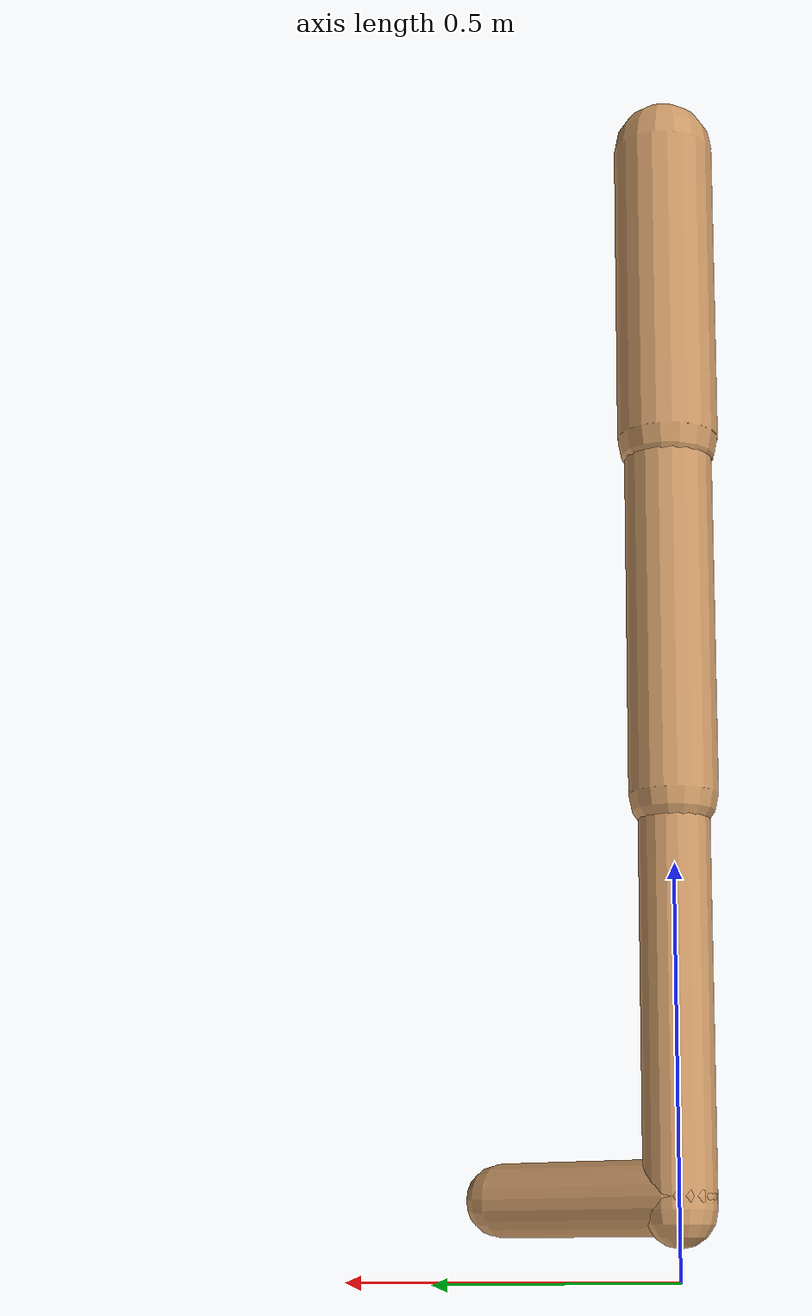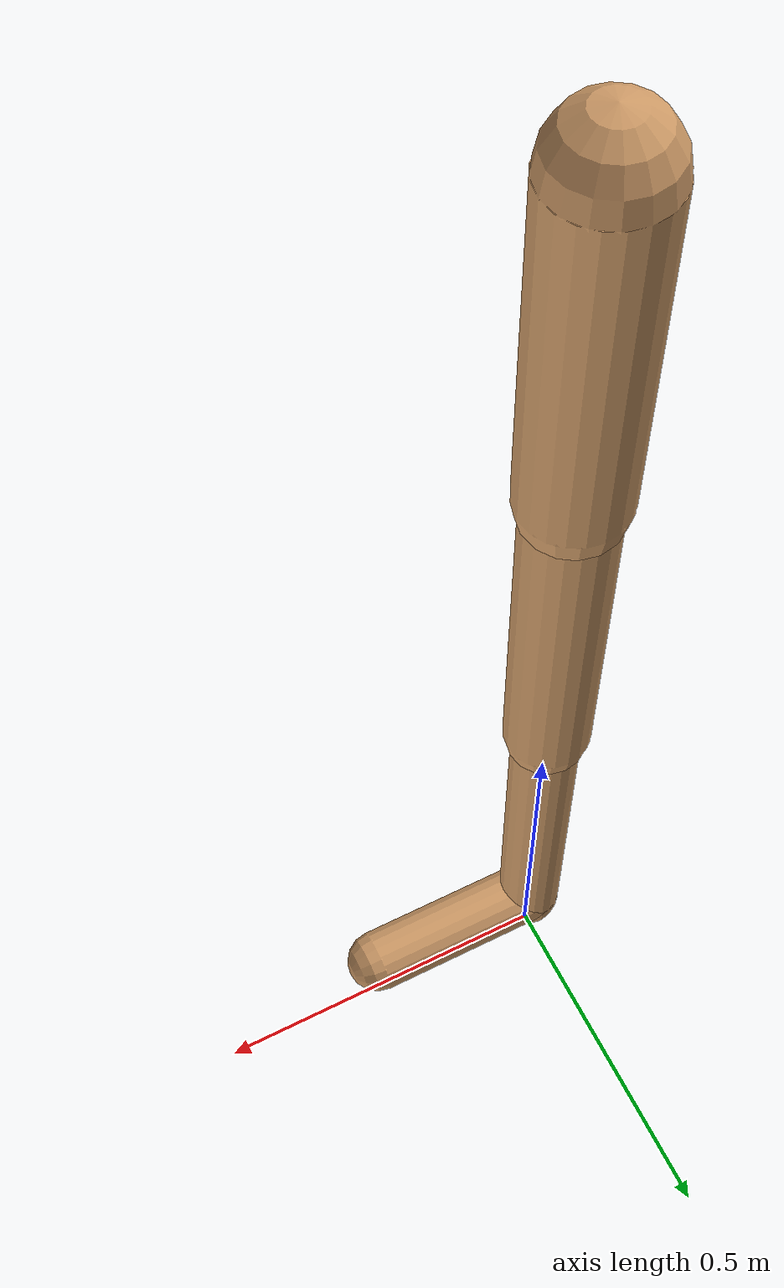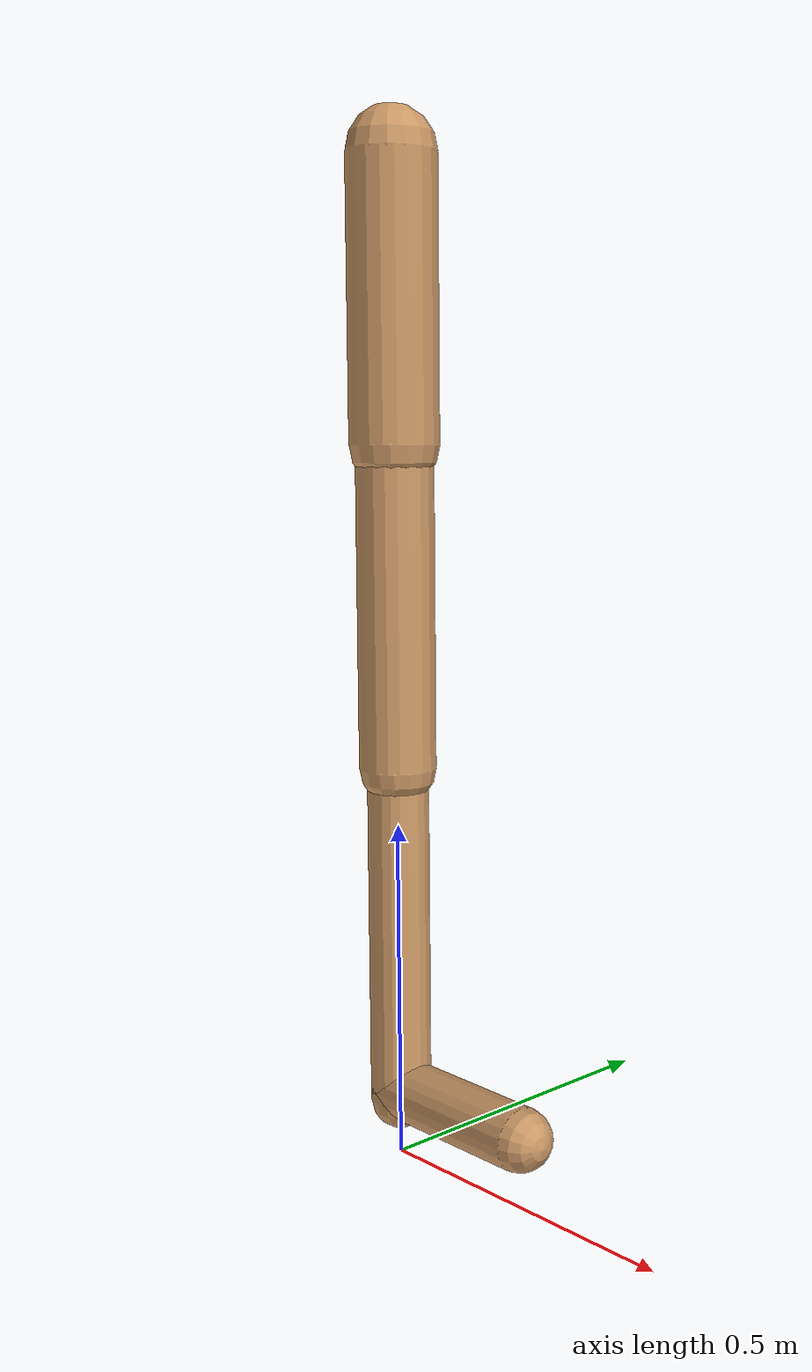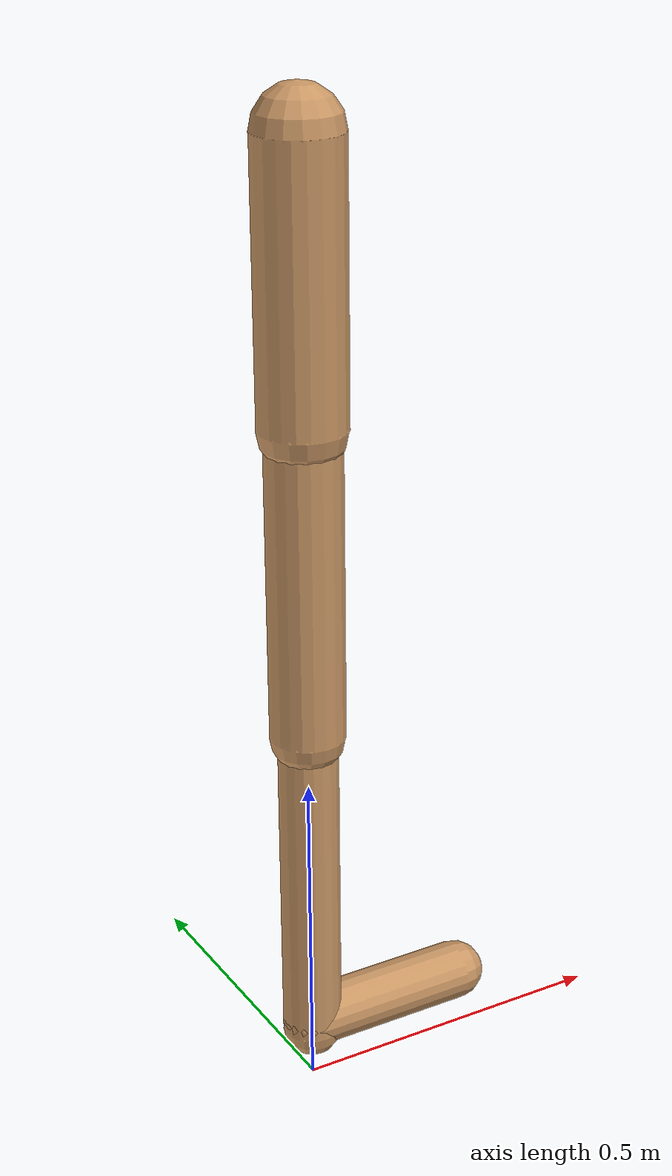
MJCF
<mujoco model="walker2d">
  <compiler angle="degree" coordinate="global" inertiafromgeom="true" />
  <default>
    <joint armature="0.01" damping=".1" limited="true" />
    <geom conaffinity="0" condim="3" contype="1" density="1000" friction="0.8 .1 .1" rgba="0.8 0.6 .4 1" />
  </default>
  <option integrator="RK4" timestep="0.002" />
  <worldbody>

    <body name="torso" pos="0 0 0.029406891538473576">
      <joint armature="0" axis="1 0 0" damping="0" limited="false" name="ignorex" pos="0 0 0" stiffness="0" type="slide" />
      <joint armature="0" axis="0 0 1" damping="0" limited="false" name="ignorez" pos="0 0 0" ref="1.25" stiffness="0" type="slide" />
      <joint armature="0" axis="0 1 0" damping="0" limited="false" name="ignorey" pos="0 0 0" stiffness="0" type="hinge" />
      <geom fromto="0 0 1.45 0 0 1.05" name="torso_geom" size="0.0643061923599738" type="capsule" />
      <body name="thigh">
        <joint axis="0 -1 0" name="thigh_joint" pos="0 0 1.05" range="-150 0" type="hinge" />
        <geom fromto="0.0 0.0 1.05 0.0 0.0 0.5860704197975651" name="thigh_geom" size="0.05582043219532571" type="capsule" />
        <body name="leg" pos="0.0 0.0 -0.013929580202434844">
          <joint axis="0 -1 0" name="leg_joint" pos="0 0 0.6" range="-150 0" type="hinge" />
          <geom fromto="0.0 0.0 0.6 0.0 0.0 0.08452268866396129" name="leg_geom" size="0.04465634575626057" type="capsule" />
          <body name="foot" pos="0.0 0.0 -0.015477311336038718">
            <joint axis="0 -1 0" name="foot_joint" pos="0 0 0.1" range="-45 45" type="hinge" />
            <geom fromto="-0.0 0.0 0.1 0.2554974347498572 0.0 0.1" name="foot_geom" size="0.045159646576844556" type="capsule" />
          </body>
        </body>
      </body>

      <body name="thigh_left">
        <joint axis="0 -1 0" name="thigh_left_joint" pos="0 0 1.05" range="-150 0" type="hinge" />
        <geom fromto="0.0 0.0 1.05 0.0 0.0 0.5860704197975651" name="thigh_left_geom" rgba=".7 .3 .6 1" size="0.05582043219532571" type="capsule" />
        <body name="leg_left" pos="0.0 0.0 -0.013929580202434844">
          <joint axis="0 -1 0" name="leg_left_joint" pos="0 0 0.6" range="-150 0" type="hinge" />
          <geom fromto="0.0 0.0 0.6 0.0 0.0 0.08452268866396129" name="leg_left_geom" rgba=".7 .3 .6 1" size="0.04465634575626057" type="capsule" />
          <body name="foot_left" pos="0.0 0.0 -0.015477311336038718">
            <joint axis="0 -1 0" name="foot_left_joint" pos="0 0 0.1" range="-45 45" type="hinge" />
            <geom fromto="-0.0 0.0 0.1 0.2554974347498572 0.0 0.1" name="foot_left_geom" rgba=".7 .3 .6 1" size="0.045159646576844556" type="capsule" />
          </body>
        </body>
      </body>
    </body>
  </worldbody>
  <actuator>

    <motor ctrllimited="true" ctrlrange="-1.0 1.0" gear="100" joint="thigh_joint" />
    <motor ctrllimited="true" ctrlrange="-1.0 1.0" gear="100" joint="leg_joint" />
    <motor ctrllimited="true" ctrlrange="-1.0 1.0" gear="100" joint="foot_joint" />
    <motor ctrllimited="true" ctrlrange="-1.0 1.0" gear="100" joint="thigh_left_joint" />
    <motor ctrllimited="true" ctrlrange="-1.0 1.0" gear="100" joint="leg_left_joint" />
    <motor ctrllimited="true" ctrlrange="-1.0 1.0" gear="100" joint="foot_left_joint" />

  </actuator>
</mujoco>
